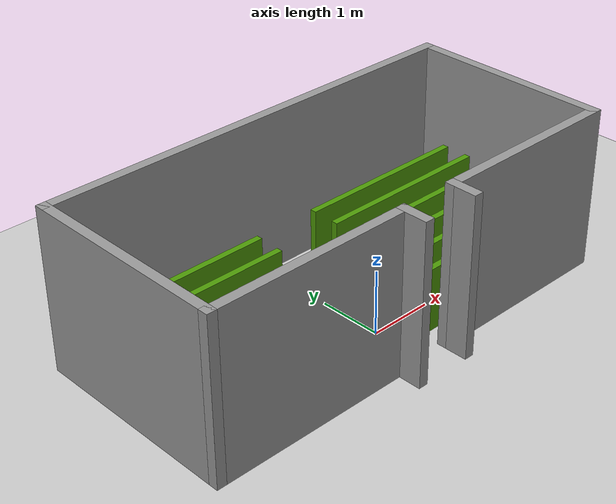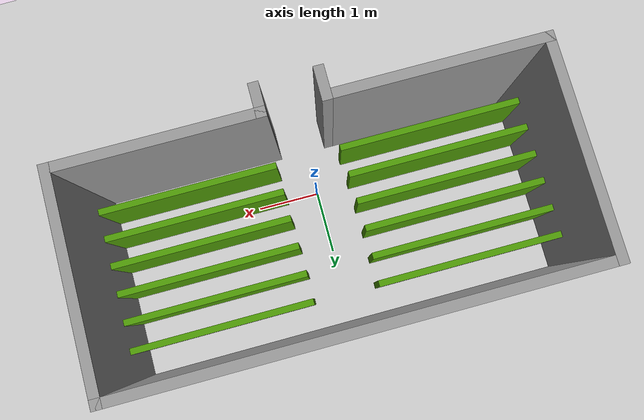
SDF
<sdf version="1.7">
 <world name="default">
  <light name="sun" type="directional">
   <pose>0 0 10 0 -0 0</pose>
   <diffuse>0.8 0.8 0.8 1</diffuse>
   <specular>0.2 0.2 0.2 1</specular>
   <attenuation>
    <range>1000</range>
    <constant>0.9</constant>
    <linear>0.01</linear>
    <quadratic>0.001</quadratic>
   </attenuation>
   <direction>-0.5 0.1 -0.9</direction>
   <spot><inner_angle>0</inner_angle><outer_angle>0</outer_angle><falloff>0</falloff></spot>
  </light>
  <model name="ground_plane">
   <static>1</static>
   <link name="link">
    <collision name="collision">
     <geometry><plane><normal>0 0 1</normal><size>100 100</size></plane></geometry>
     <surface>
      <contact><collide_bitmask>65535</collide_bitmask></contact>
      <friction><ode><mu>100</mu><mu2>50</mu2></ode></friction>
     </surface>
    </collision>
    <visual name="visual">
     <cast_shadows>0</cast_shadows>
     <geometry><plane><normal>0 0 1</normal><size>100 100</size></plane></geometry>
     <material>
      <script><uri>file://media/materials/scripts/gazebo.material</uri><name>Gazebo/Grey</name></script>
     </material>
    </visual>
   </link>
  </model>
  <gravity>0 0 -9.8</gravity>
  <magnetic_field>6e-06 2.3e-05 -4.2e-05</magnetic_field>
  <atmosphere type="adiabatic"/>
  <physics type="ode">
   <max_step_size>0.001</max_step_size>
   <real_time_factor>1</real_time_factor>
   <real_time_update_rate>1000</real_time_update_rate>
  </physics>
  <scene><ambient>0.4 0.4 0.4 1</ambient><background>0.7 0.7 0.7 1</background><shadows>1</shadows></scene>
  <spherical_coordinates>
   <surface_model>EARTH_WGS84</surface_model>
   <latitude_deg>0</latitude_deg>
   <longitude_deg>0</longitude_deg>
   <elevation>0</elevation>
   <heading_deg>0</heading_deg>
  </spherical_coordinates>
  <model name="rowfollowing_small">
   <pose>-0.04 0.555 0 0 -0 0</pose>
   <link name="Wall_0">
    <collision name="Wall_0_Collision">
     <geometry><box><size>2.95 0.1 1</size></box></geometry>
     <pose>0 0 0.5 0 -0 0</pose>
    </collision>
    <visual name="Wall_0_Visual">
     <pose>0 0 0.5 0 -0 0</pose>
     <geometry><box><size>2.95 0.1 1</size></box></geometry>
     <material>
      <script><uri>file://media/materials/scripts/gazebo.material</uri><name>Gazebo/Grey</name></script>
      <ambient>0.305882 0.603922 0.0235294 1</ambient>
     </material>
     <meta><layer>0</layer></meta>
    </visual>
    <pose>-1.955 1.195 0 0 -0 3.14159</pose>
   </link>
   <link name="Wall_10">
    <collision name="Wall_10_Collision">
     <geometry><box><size>2.95 0.1 1</size></box></geometry>
     <pose>0 0 0.5 0 -0 0</pose>
    </collision>
    <visual name="Wall_10_Visual">
     <pose>0 0 0.5 0 -0 0</pose>
     <geometry><box><size>2.95 0.1 1</size></box></geometry>
     <material>
      <script><uri>file://media/materials/scripts/gazebo.material</uri><name>Gazebo/Grey</name></script>
      <ambient>0.305882 0.603922 0.0235294 1</ambient>
     </material>
     <meta><layer>0</layer></meta>
    </visual>
    <pose>-1.945 -0.995 0 0 -0 0</pose>
   </link>
   <link name="Wall_12">
    <collision name="Wall_12_Collision">
     <geometry><box><size>2.95 0.1 1</size></box></geometry>
     <pose>0 0 0.5 0 -0 0</pose>
    </collision>
    <visual name="Wall_12_Visual">
     <pose>0 0 0.5 0 -0 0</pose>
     <geometry><box><size>2.95 0.1 1</size></box></geometry>
     <material>
      <script><uri>file://media/materials/scripts/gazebo.material</uri><name>Gazebo/Grey</name></script>
      <ambient>0.305882 0.603922 0.0235294 1</ambient>
     </material>
     <meta><layer>0</layer></meta>
    </visual>
    <pose>2.015 1.195 0 0 -0 0</pose>
   </link>
   <link name="Wall_14">
    <collision name="Wall_14_Collision">
     <geometry><box><size>2.95 0.1 1</size></box></geometry>
     <pose>0 0 0.5 0 -0 0</pose>
    </collision>
    <visual name="Wall_14_Visual">
     <pose>0 0 0.5 0 -0 0</pose>
     <geometry><box><size>2.95 0.1 1</size></box></geometry>
     <material>
      <script><uri>file://media/materials/scripts/gazebo.material</uri><name>Gazebo/Grey</name></script>
      <ambient>0.305882 0.603922 0.0235294 1</ambient>
     </material>
     <meta><layer>0</layer></meta>
    </visual>
    <pose>2.005 0.755 0 0 -0 0</pose>
   </link>
   <link name="Wall_16">
    <collision name="Wall_16_Collision">
     <geometry><box><size>2.95 0.1 1</size></box></geometry>
     <pose>0 0 0.5 0 -0 0</pose>
    </collision>
    <visual name="Wall_16_Visual">
     <pose>0 0 0.5 0 -0 0</pose>
     <geometry><box><size>2.95 0.1 1</size></box></geometry>
     <material>
      <script><uri>file://media/materials/scripts/gazebo.material</uri><name>Gazebo/Grey</name></script>
      <ambient>0.305882 0.603922 0.0235294 1</ambient>
     </material>
     <meta><layer>0</layer></meta>
    </visual>
    <pose>2.015 0.315 0 0 -0 0</pose>
   </link>
   <link name="Wall_18">
    <collision name="Wall_18_Collision">
     <geometry><box><size>2.95 0.1 1</size></box></geometry>
     <pose>0 0 0.5 0 -0 0</pose>
    </collision>
    <visual name="Wall_18_Visual">
     <pose>0 0 0.5 0 -0 0</pose>
     <geometry><box><size>2.95 0.1 1</size></box></geometry>
     <material>
      <script><uri>file://media/materials/scripts/gazebo.material</uri><name>Gazebo/Grey</name></script>
      <ambient>0.305882 0.603922 0.0235294 1</ambient>
     </material>
     <meta><layer>0</layer></meta>
    </visual>
    <pose>2.025 -0.125 0 0 -0 0</pose>
   </link>
   <link name="Wall_2">
    <collision name="Wall_2_Collision">
     <geometry><box><size>2.95 0.1 1</size></box></geometry>
     <pose>0 0 0.5 0 -0 0</pose>
    </collision>
    <visual name="Wall_2_Visual">
     <pose>0 0 0.5 0 -0 0</pose>
     <geometry><box><size>2.95 0.1 1</size></box></geometry>
     <material>
      <script><uri>file://media/materials/scripts/gazebo.material</uri><name>Gazebo/Grey</name></script>
      <ambient>0.305882 0.603922 0.0235294 1</ambient>
     </material>
     <meta><layer>0</layer></meta>
    </visual>
    <pose>-1.975 0.765 0 0 -0 0</pose>
   </link>
   <link name="Wall_20">
    <collision name="Wall_20_Collision">
     <geometry><box><size>2.95 0.1 1</size></box></geometry>
     <pose>0 0 0.5 0 -0 0</pose>
    </collision>
    <visual name="Wall_20_Visual">
     <pose>0 0 0.5 0 -0 0</pose>
     <geometry><box><size>2.95 0.1 1</size></box></geometry>
     <material>
      <script><uri>file://media/materials/scripts/gazebo.material</uri><name>Gazebo/Grey</name></script>
      <ambient>0.305882 0.603922 0.0235294 1</ambient>
     </material>
     <meta><layer>0</layer></meta>
    </visual>
    <pose>2.025 -0.555 0 0 -0 0</pose>
   </link>
   <link name="Wall_22">
    <collision name="Wall_22_Collision">
     <geometry><box><size>2.95 0.1 1</size></box></geometry>
     <pose>0 0 0.5 0 -0 0</pose>
    </collision>
    <visual name="Wall_22_Visual">
     <pose>0 0 0.5 0 -0 0</pose>
     <geometry><box><size>2.95 0.1 1</size></box></geometry>
     <material>
      <script><uri>file://media/materials/scripts/gazebo.material</uri><name>Gazebo/Grey</name></script>
      <ambient>0.305882 0.603922 0.0235294 1</ambient>
     </material>
     <meta><layer>0</layer></meta>
    </visual>
    <pose>2.035 -0.985 0 0 -0 0</pose>
   </link>
   <link name="Wall_25">
    <collision name="Wall_25_Collision">
     <geometry><box><size>3.25 0.15 2.5</size></box></geometry>
     <pose>0 0 1.25 0 -0 0</pose>
    </collision>
    <visual name="Wall_25_Visual">
     <pose>0 0 1.25 0 -0 0</pose>
     <geometry><box><size>3.25 0.15 2.5</size></box></geometry>
     <material>
      <script><uri>file://media/materials/scripts/gazebo.material</uri><name>Gazebo/Grey</name></script>
      <ambient>1 1 1 1</ambient>
     </material>
     <meta><layer>0</layer></meta>
    </visual>
    <pose>-1.91 -1.375 0 0 -0 3.14159</pose>
   </link>
   <link name="Wall_26">
    <collision name="Wall_26_Collision">
     <geometry><box><size>3.25 0.15 2.5</size></box></geometry>
     <pose>0 0 1.25 0 -0 0</pose>
    </collision>
    <visual name="Wall_26_Visual">
     <pose>0 0 1.25 0 -0 0</pose>
     <geometry><box><size>3.25 0.15 2.5</size></box></geometry>
     <material>
      <script><uri>file://media/materials/scripts/gazebo.material</uri><name>Gazebo/Grey</name></script>
      <ambient>1 1 1 1</ambient>
     </material>
     <meta><layer>0</layer></meta>
    </visual>
    <pose>-3.46 0.175 0 0 -0 1.5708</pose>
   </link>
   <link name="Wall_27">
    <collision name="Wall_27_Collision">
     <geometry><box><size>7.07 0.15 2.5</size></box></geometry>
     <pose>0 0 1.25 0 -0 0</pose>
    </collision>
    <visual name="Wall_27_Visual">
     <pose>0 0 1.25 0 -0 0</pose>
     <geometry><box><size>7.07 0.15 2.5</size></box></geometry>
     <material>
      <script><uri>file://media/materials/scripts/gazebo.material</uri><name>Gazebo/Grey</name></script>
      <ambient>1 1 1 1</ambient>
     </material>
     <meta><layer>0</layer></meta>
    </visual>
    <pose>-0 1.725 0 0 -0 0</pose>
   </link>
   <link name="Wall_28">
    <collision name="Wall_28_Collision">
     <geometry><box><size>3.25 0.15 2.5</size></box></geometry>
     <pose>0 0 1.25 0 -0 0</pose>
    </collision>
    <visual name="Wall_28_Visual">
     <pose>0 0 1.25 0 -0 0</pose>
     <geometry><box><size>3.25 0.15 2.5</size></box></geometry>
     <material>
      <script><uri>file://media/materials/scripts/gazebo.material</uri><name>Gazebo/Grey</name></script>
      <ambient>1 1 1 1</ambient>
     </material>
     <meta><layer>0</layer></meta>
    </visual>
    <pose>3.46 0.175 0 0 -0 -1.5708</pose>
   </link>
   <link name="Wall_29">
    <collision name="Wall_29_Collision">
     <geometry><box><size>3.07 0.15 2.5</size></box></geometry>
     <pose>0 0 1.25 0 -0 0</pose>
    </collision>
    <visual name="Wall_29_Visual">
     <pose>0 0 1.25 0 -0 0</pose>
     <geometry><box><size>3.07 0.15 2.5</size></box></geometry>
     <material>
      <script><uri>file://media/materials/scripts/gazebo.material</uri><name>Gazebo/Grey</name></script>
      <ambient>1 1 1 1</ambient>
     </material>
     <meta><layer>0</layer></meta>
    </visual>
    <pose>2 -1.375 0 0 -0 3.14159</pose>
   </link>
   <link name="Wall_30">
    <collision name="Wall_30_Collision">
     <geometry><box><size>0.5 0.15 2.5</size></box></geometry>
     <pose>0 0 1.25 0 -0 0</pose>
    </collision>
    <visual name="Wall_30_Visual">
     <pose>0 0 1.25 0 -0 0</pose>
     <geometry><box><size>0.5 0.15 2.5</size></box></geometry>
     <material>
      <script><uri>file://media/materials/scripts/gazebo.material</uri><name>Gazebo/Grey</name></script>
      <ambient>1 1 1 1</ambient>
     </material>
     <meta><layer>0</layer></meta>
    </visual>
    <pose>0.54 -1.55 0 0 -0 -1.5708</pose>
   </link>
   <link name="Wall_34">
    <collision name="Wall_34_Collision">
     <geometry><box><size>0.5 0.15 2.5</size></box></geometry>
     <pose>0 0 1.25 0 -0 0</pose>
    </collision>
    <visual name="Wall_34_Visual">
     <pose>0 0 1.25 0 -0 0</pose>
     <geometry><box><size>0.5 0.15 2.5</size></box></geometry>
     <material>
      <script><uri>file://media/materials/scripts/gazebo.material</uri><name>Gazebo/Grey</name></script>
      <ambient>1 1 1 1</ambient>
     </material>
     <meta><layer>0</layer></meta>
    </visual>
    <pose>-0.36 -1.55 0 0 -0 -1.5708</pose>
   </link>
   <link name="Wall_4">
    <collision name="Wall_4_Collision">
     <geometry><box><size>2.95 0.1 1</size></box></geometry>
     <pose>0 0 0.5 0 -0 0</pose>
    </collision>
    <visual name="Wall_4_Visual">
     <pose>0 0 0.5 0 -0 0</pose>
     <geometry><box><size>2.95 0.1 1</size></box></geometry>
     <material>
      <script><uri>file://media/materials/scripts/gazebo.material</uri><name>Gazebo/Grey</name></script>
      <ambient>0.305882 0.603922 0.0235294 1</ambient>
     </material>
     <meta><layer>0</layer></meta>
    </visual>
    <pose>-1.985 0.325 0 0 -0 0</pose>
   </link>
   <link name="Wall_6">
    <collision name="Wall_6_Collision">
     <geometry><box><size>2.95 0.1 1</size></box></geometry>
     <pose>0 0 0.5 0 -0 0</pose>
    </collision>
    <visual name="Wall_6_Visual">
     <pose>0 0 0.5 0 -0 0</pose>
     <geometry><box><size>2.95 0.1 1</size></box></geometry>
     <material>
      <script><uri>file://media/materials/scripts/gazebo.material</uri><name>Gazebo/Grey</name></script>
      <ambient>0.305882 0.603922 0.0235294 1</ambient>
     </material>
     <meta><layer>0</layer></meta>
    </visual>
    <pose>-1.975 -0.115 0 0 -0 0</pose>
   </link>
   <link name="Wall_8">
    <collision name="Wall_8_Collision">
     <geometry><box><size>2.95 0.1 1</size></box></geometry>
     <pose>0 0 0.5 0 -0 0</pose>
    </collision>
    <visual name="Wall_8_Visual">
     <pose>0 0 0.5 0 -0 0</pose>
     <geometry><box><size>2.95 0.1 1</size></box></geometry>
     <material>
      <script><uri>file://media/materials/scripts/gazebo.material</uri><name>Gazebo/Grey</name></script>
      <ambient>0.305882 0.603922 0.0235294 1</ambient>
     </material>
     <meta><layer>0</layer></meta>
    </visual>
    <pose>-1.965 -0.555 0 0 -0 0</pose>
   </link>
   <static>1</static>
  </model>
 </world>
</sdf>
